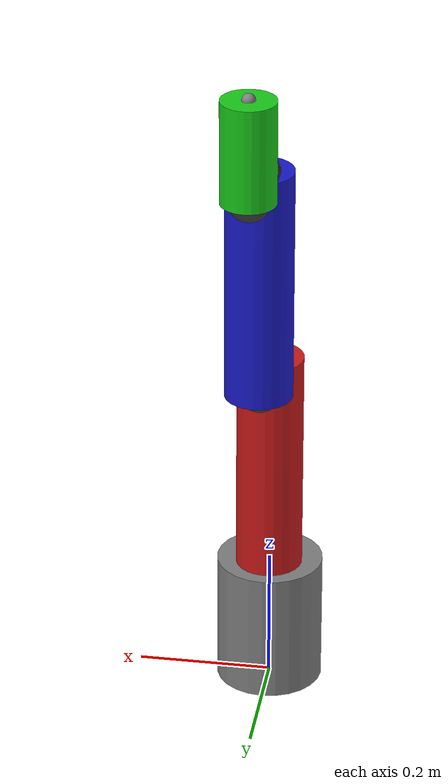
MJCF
<!--basándonos en el código proporcionado por el equipo docente-->
<!--se crea el modelo con nombre "brazorobotico"-->
<mujoco model="brazorobotico">

   <!--se setean las unidades de los ángulos a radianes y el repositorio de donde se sacarán los modelos-->
  <compiler angle="radian" autolimits="true"/>

   <!--se crean las configuraciones generales del brazo, como la resistencia al giro y la inercia del motor-->
  <default>
    <default class="brazo">

       <!--para toda la clase brazo se ocuparan cilindros, de aquí lo simple y el cambio con los códigos que intentabmos hacer antes. cargamos un cilindro dentro del código-->
      <geom friction="0.2" margin="0.001" type="cylinder" contype="0" conaffinity="0" group="2"/>
      <joint damping="10.0" armature="0.01"/>

      <!--las configuraciones básicas para los joints (uniones):-->
      <default class="q_rot_z">  <!--este joint me permitirá darle movimientos a las partes del brazo alrededor del eje z mas adelante-->
        <joint axis="0 0 1" range="-3.14 3.14"/>
        <position ctrlrange="-3.14 3.14" kp="15" forcerange="-15 15"/>
      </default>
      <default class="q_rot_y"> <!--este joint me permitirá darle movimientos a las partes del brazo alrededor del eje y mas adelante-->
        <joint axis="0 1 0" range="-1.57 1.57"/>
        <position ctrlrange="-1.57 1.57" kp="15" forcerange="-15 15"/>
      </default>

       <!--además creamos los materiales de cada parte para después darle un color y poder diferenciar facilmente-->
      <default class="mat_base">
        <geom material="mat_base"/>
      </default>
      <default class="mat_link_horiz">
        <geom material="mat_link_horiz"/>
      </default>
      <default class="mat_hombro">
        <geom material="mat_hombro"/>
      </default>
      <default class="mat_antebrazo">
        <geom material="mat_antebrazo"/>
      </default>
      <default class="mat_gripper">
        <geom material="mat_gripper"/>
      </default>
    </default>
  </default>

  <asset>

     <!--se definen los colores con rgba-->
    <material name="mat_base" specular="0" shininess="0.25" rgba="0.5 0.5 0.5 1"/> <material name="mat_link_horiz" specular="0" shininess="0.25" rgba="0.2 0.2 0.2 1"/> <material name="mat_hombro" specular="0" shininess="0.25" rgba="0.8 0.1 0.1 1"/> <material name="mat_antebrazo" specular="0" shininess="0.25" rgba="0.1 0.1 0.8 1"/> <material name="mat_gripper" specular="0" shininess="0.25" rgba="0.1 0.8 0.1 1"/> </asset>

   <!--en la siguiente sección vamos a generar el brazo robótico como tal-->
  <worldbody>

     <!--generamos iluminación de la escena-->
    <light name="spotlight" mode="targetbodycom" target="base_link" pos="0 -1 2"/>

     <!--iniciamos cargando la base como "hija" del brazo, estará en el origen del sistema (se relaciona con el cuerpo padre (brazo)-->
    <body name="base_link" pos="0 0 0" childclass="brazo">

       <!--definimos una inercia-->
      <inertial mass="1.0" pos="0 0 0.10" diaginertia="0.01 0.01 0.01"/>

       <!--le asignamos una geometría visible y su ubicación en el espacio-->
      <geom class="mat_base" fromto="0 0 0  0 0 0.20" size="0.08"/>

       <!--comenzamos a anidar las piezas "hijas" de la base-->
      <body name="link_1" pos="0 0 0.20">

         <!--para cada parte que rote se le deberá asociar un "joint" de los definidos anteriormente-->
        <joint class="q_rot_z" name="q0_base" pos="0 0 0"/>
        <inertial mass="0.1" pos="0 0.005 0" diaginertia="0.001 0.001 0.001"/>
        <geom class="mat_link_horiz" fromto="0 0 0  0 0.01 0" size="0.03"/>

        <body name="hombro_link" pos="0 0.01 0">
          <joint class="q_rot_y" name="q1_hombro" pos="0 0 0"/>
          <inertial mass="0.5" pos="0 0 0.172" diaginertia="0.01 0.01 0.01"/>
          <geom class="mat_hombro" fromto="0 0 0  0 0 0.344" size="0.05"/>

          <body name="link_2" pos="0 0 0.344">
            <joint class="q_rot_y" name="q2_link2" pos="0 0 0"/>
            <inertial mass="0.2" pos="0 0.06 0" diaginertia="0.005 0.005 0.005"/>
            <geom class="mat_link_horiz" fromto="0 0 0  0 0.1205 0" size="0.03"/>

            <body name="antebrazo_link" pos="0 0.1205 0">
              <joint class="q_rot_z" name="q3_antebrazo" pos="0 0 0"/>
              <inertial mass="0.5" pos="0 0 0.175" diaginertia="0.01 0.01 0.01"/>
              <geom class="mat_antebrazo" fromto="0 0 0  0 0 0.35" size="0.05"/>

              <body name="link_3" pos="0 0 0.35">
                <joint class="q_rot_y" name="q4_link3" pos="0 0 0"/>
                <inertial mass="0.2" pos="0 0.055 0" diaginertia="0.005 0.005 0.005"/>
                <geom class="mat_link_horiz" fromto="0 0 0  0 0.11 0" size="0.03"/>

                <body name="gripper_link" pos="0 0.11 0">
                  <joint class="q_rot_z" name="q5_gripper" pos="0 0 0"/>
                  <inertial mass="0.1" pos="0 0 0.075" diaginertia="0.001 0.001 0.001"/>
                  <geom class="mat_gripper" fromto="0 0 0  0 0 0.15" size="0.04"/>

                  <site name="eef" pos="0 0 0.15" size="0.01"/>
                </body>
              </body>
            </body>
          </body>
        </body>
      </body>
    </body>
  </worldbody>

   <!--se generan los actuadores (motores a actuar en cada joint definido)\-->
  <actuator>
    <position class="q_rot_z" name="act_q0" joint="q0_base"/>
    <position class="q_rot_y" name="act_q1" joint="q1_hombro"/>
    <position class="q_rot_y" name="act_q2" joint="q2_link2"/>
    <position class="q_rot_z" name="act_q3" joint="q3_antebrazo"/>
    <position class="q_rot_y" name="act_q4" joint="q4_link3"/>
    <position class="q_rot_z" name="act_q5" joint="q5_gripper"/>
  </actuator>

  <keyframe>
    <key name="home" qpos="0 0 0 0 0 0" ctrl="0 0 0 0 0 0"/>
  </keyframe>

</mujoco>
